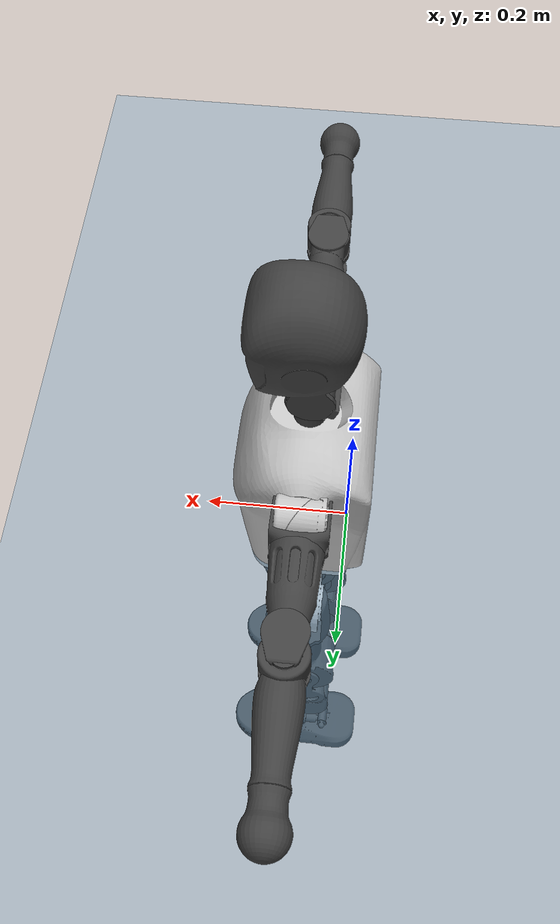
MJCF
<mujoco model="T1">
  <compiler angle="radian" assetdir="assets" balanceinertia="true" inertiafromgeom="false"/>

  <option timestep="0.005" density="1.2" viscosity="2e-05"/>

  <size nkey="1"/>

  <visual>
    <quality shadowsize="8192"/>
    <map shadowclip="0.5"/>
  </visual>

  <default>
    <default class="/">
      <joint armature="0.01" damping="0.01" frictionloss="0.1"/>
      <geom contype="0" conaffinity="0" group="1" solref="-1000 -80"/>
      <site size="0.01 0.005 0.005" group="5"/>
      <general forcelimited="true" biastype="affine" gainprm="25" biasprm="0 -25 -0.6"/>
      <default class="t1">
        <geom rgba="0.25 0.25 0.25 1"/>
        <default class="visual">
          <geom type="mesh" group="2"/>
        </default>
        <default class="collision">
          <geom group="3"/>
        </default>
        <default class="foot">
          <geom size="0.1115 0.05 0.015" type="box" condim="6" group="4" priority="1" solimp="0.015 1 0.015"/>
        </default>
        <default class="reward_collision_sphere">
          <geom group="5" rgba="1 0 0 1"/>
        </default>
      </default>
    </default>
  </default>

  <asset>
    <texture type="skybox" colorspace="auto" name="//unnamed_texture_0" builtin="gradient" rgb1="0.95 0.95 0.95" rgb2="0.95 0.95 0.95" width="100" height="600"/>
    <texture type="2d" colorspace="auto" name="texplane" builtin="checker" rgb1="0.345 0.575 0.748" rgb2="0.345 0.575 0.748" markrgb="1 1 1" width="512" height="512"/>
    <material name="MatPlane" class="/" texture="texplane" texuniform="true" texrepeat="2 2" specular="0.9"/>
    <mesh name="Trunk" class="/" file="Trunk.stl"/>
    <mesh name="H1" class="/" file="H1.stl"/>
    <mesh name="H2" class="/" file="H2.stl"/>
    <mesh name="AL1" class="/" file="AL1.stl"/>
    <mesh name="AL2" class="/" file="AL2.stl"/>
    <mesh name="AL3" class="/" file="AL3.stl"/>
    <mesh name="left_hand_link" class="/" file="left_hand_link.stl"/>
    <mesh name="AR1" class="/" file="AR1.stl"/>
    <mesh name="AR2" class="/" file="AR2.stl"/>
    <mesh name="AR3" class="/" file="AR3.stl"/>
    <mesh name="right_hand_link" class="/" file="right_hand_link.stl"/>
    <mesh name="Waist" class="/" file="Waist.stl"/>
    <mesh name="Hip_Pitch_Left" class="/" file="Hip_Pitch_Left.stl"/>
    <mesh name="Hip_Roll_Left" class="/" file="Hip_Roll_Left.stl"/>
    <mesh name="Hip_Yaw_Left" class="/" file="Hip_Yaw_Left.stl"/>
    <mesh name="Shank_Left" class="/" file="Shank_Left.stl"/>
    <mesh name="Ankle_Cross_Left" class="/" file="Ankle_Cross_Left.stl"/>
    <mesh name="left_foot_link" class="/" file="left_foot_link.stl"/>
    <mesh name="Hip_Pitch_Right" class="/" file="Hip_Pitch_Right.stl"/>
    <mesh name="Hip_Roll_Right" class="/" file="Hip_Roll_Right.stl"/>
    <mesh name="Hip_Yaw_Right" class="/" file="Hip_Yaw_Right.stl"/>
    <mesh name="Shank_Right" class="/" file="Shank_Right.stl"/>
    <mesh name="Ankle_Cross_Right" class="/" file="Ankle_Cross_Right.stl"/>
    <mesh name="right_foot_link" class="/" file="right_foot_link.stl"/>
  </asset>

  <worldbody>
    <geom name="floor" class="/" size="100 100 0.125" type="plane" group="0" material="MatPlane"/>
    <light name="toplight_shadow" class="/" pos="0 0 5" dir="0.0990148 0.0990148 -0.990148" type="directional" ambient="0.04 0.04 0.04" diffuse="0.55 0.55 0.55" specular="0.12 0.12 0.12"/>
    <light name="toplight_fill" class="/" pos="0 0 5" dir="0.0990148 0.0990148 -0.990148" type="directional" castshadow="false" ambient="0.04 0.04 0.04" diffuse="0.3 0.3 0.3" specular="0.08 0.08 0.08"/>
    <body name="trunk" childclass="t1" pos="1.4197e-05 -0.00176063 -0.000519002" quat="0.999999 -0.000623643 -0.0011513 -0.000379106">
      <inertial pos="0.0525933 -0.00147835 0.106192" quat="0.999874 0.0121788 -0.008047 -0.00619214" mass="9.6155" diaginertia="0.0857108 0.0300168 0.0613155"/>
      <joint name="//unnamed_joint_0" type="free" armature="0" damping="0" frictionloss="0"/>
      <geom name="//unnamed_geom_1" class="visual" rgba="0.76 0.76 0.76 1" mesh="Trunk"/>
      <geom name="//unnamed_geom_2" class="collision" size="0.0705495 0.094066 0.141099" pos="0.0585881 0 0.121802" type="box"/>
      <geom name="//unnamed_geom_3" class="reward_collision_sphere" size="0.108176" pos="0.0585881 0 0.101502"/>
      <geom name="//unnamed_geom_4" class="reward_collision_sphere" size="0.0141099" pos="0.0585881 0.070592 0"/>
      <geom name="//unnamed_geom_5" class="reward_collision_sphere" size="0.0141099" pos="0.0585881 -0.070592 0"/>
      <geom name="//unnamed_geom_6" class="reward_collision_sphere" size="0.0141099" pos="0.0585881 0.0888628 0.182703"/>
      <geom name="//unnamed_geom_7" class="reward_collision_sphere" size="0.0141099" pos="0.0585881 -0.0888628 0.182703"/>
      <site name="imu" pos="0.0133367 -0.000137481 -0.0131624" size="0.0094066"/>
      <camera name="track" pos="0 -1.66099 0" quat="0.707107 0.707107 0 0" mode="trackcom"/>
      <camera name="ego_camera" pos="0.119129 0 0.426308" quat="-0.5 -0.5 0.5 0.5"/>
      <body name="H1" pos="0.0575139 -1.49064e-05 0.244149" quat="1 4.83593e-05 -3.28849e-05 -5.40161e-06">
        <inertial pos="-0.00173848 -0.000720707 0.0582841" quat="0.762812 -0.014288 -0.000196984 0.646462" mass="0.364208" diaginertia="0.00020804 8.80284e-05 0.000160458"/>
        <joint name="AAHead_yaw" pos="0 0 0" axis="-0.000167703 -0.00465566 0.999989" stiffness="0.00609672" range="-1.51479 1.56905" armature="0.0106152" damping="0.00589625" frictionloss="0.106717"/>
        <geom name="//unnamed_geom_8" class="visual" mesh="H1"/>
        <body name="H2" pos="-0.00239636 -0.00213261 0.0631648" quat="1 0.000273053 -0.000180854 -0.000328624">
          <inertial pos="0.00958086 -0.0023107 0.0978465" quat="0.990242 0.101988 -0.0643558 -0.0698359" mass="0.531236" diaginertia="0.0017751 0.000735259 0.00185317"/>
          <joint name="Head_pitch" pos="0 0 0" axis="0.000174002 -1 -5.69825e-05" range="-1.235 0.359673" armature="0.0105038" damping="0" frictionloss="0.0890413"/>
          <geom name="//unnamed_geom_9" class="visual" mesh="H2"/>
          <geom name="//unnamed_geom_10" class="collision" size="0.0752528" pos="0.00976468 0 0.111652"/>
          <geom name="//unnamed_geom_11" class="reward_collision_sphere" size="0.0846594" pos="0.0195294 0 0.101502"/>
        </body>
      </body>
      <body name="AL1" pos="0.056365 0.0882551 0.219848" quat="0.999999 0.00102508 5.33434e-05 0.000652262">
        <inertial pos="-0.00358081 0.0364994 0.000381965" quat="0.504523 0.495726 -0.503884 0.495797" mass="0.431661" diaginertia="0.0011838 0.000483726 0.000297209"/>
        <joint name="Left_Shoulder_Pitch" pos="0 0 0" axis="0.0024773 0.99986 -0.016546" range="-3.3454 1.27095" armature="0.00958448" damping="0" frictionloss="0.102798"/>
        <geom name="//unnamed_geom_12" class="visual" rgba="0.76 0.76 0.76 1" mesh="AL1"/>
        <body name="AL2" pos="-0.00143939 0.0406049 0.000356833" quat="1 0.000395545 -8.65683e-05 -0.000120874">
          <inertial pos="0.00278547 0.0342086 -0.0019514" quat="0.490036 0.50737 -0.488148 0.513957" mass="0.138435" diaginertia="0.000367367 0.000138972 0.000190905"/>
          <joint name="Left_Shoulder_Roll" pos="0 0 0" axis="-0.999997 -0.00158564 0.00167991" range="-1.54008 1.73953" armature="0.0106456" damping="0.00588551" frictionloss="0.0938782"/>
          <geom name="//unnamed_geom_13" class="visual" mesh="AL2"/>
          <body name="AL3" pos="0.00128728 0.0498877 0.00192252" quat="1 0.000185975 0.000239715 2.82058e-05">
            <inertial pos="0.00234343 0.0683129 0.000146447" quat="0.709465 0.704679 0.00782369 0.00502657" mass="0.793036" diaginertia="0.0114166 0.00489151 0.00062356"/>
            <joint name="Left_Elbow_Pitch" pos="0 0 0" axis="-0.00191522 -0.999967 0.00795628" range="-2.32149 2.24893" armature="0.0103103" damping="0.0156414" frictionloss="0.0931367"/>
            <geom name="//unnamed_geom_14" class="visual" mesh="AL3"/>
            <geom name="//unnamed_geom_15" class="collision" size="0.0282198 0.0705495" pos="0 0.0415247 0" quat="0.707105 0.707108 0 0" type="cylinder"/>
            <geom name="//unnamed_geom_16" class="reward_collision_sphere" size="0.0338638"/>
            <body name="left_hand_link" pos="0.00115884 0.121339 -0.0018308" quat="0.999999 -0.000713617 0.000750461 0.000635078">
              <inertial pos="-0.00248643 0.0923455 0.000561358" quat="0.706319 0.707893 -0.000371381 0.00120422" mass="0.271279" diaginertia="0.00701364 0.00326437 0.000240161"/>
              <joint name="Left_Elbow_Yaw" pos="0 0 0" axis="0.00384771 -0.00434259 0.999983" range="-2.44293 -0.0419633" armature="0.00991856" damping="0.019102" frictionloss="0.0963935"/>
              <geom name="//unnamed_geom_17" class="visual" mesh="left_hand_link"/>
              <geom name="//unnamed_geom_18" class="collision" size="0.0282198 0.0823077" pos="0 0.107964 0" quat="0.707105 0.707108 0 0" type="cylinder"/>
              <geom name="//unnamed_geom_19" class="reward_collision_sphere" size="0.047033"/>
              <geom name="//unnamed_geom_20" class="reward_collision_sphere" size="0.0329231" pos="0 0.0913543 0"/>
              <geom name="//unnamed_geom_21" class="reward_collision_sphere" size="0.0329231" pos="0 0.178556 0"/>
            </body>
          </body>
        </body>
      </body>
      <body name="AR1" pos="0.0565001 -0.0900321 0.220563" quat="1 -9.27257e-05 0.000652426 0.00019927">
        <inertial pos="-0.00308107 -0.0395253 0.000498084" quat="0.51029 0.492054 -0.509127 0.488135" mass="0.426362" diaginertia="0.00114783 0.000494968 0.000308012"/>
        <joint name="Right_Shoulder_Pitch" pos="0 0 0" axis="0.0126012 -0.999857 0.0112677" range="-1.21685 3.27262" armature="0.0106993" damping="0.00671872" frictionloss="0.0867674"/>
        <geom name="//unnamed_geom_22" class="visual" rgba="0.76 0.76 0.76 1" mesh="AR1"/>
        <body name="AR2" pos="0.00196845 -0.0353538 -0.00216695" quat="0.999999 -0.000870255 4.64424e-05 -0.001165">
          <inertial pos="0.00148293 -0.0320302 0.000556093" quat="0.511521 0.487913 -0.507315 0.492868" mass="0.128474" diaginertia="0.000354696 0.000140767 0.000191508"/>
          <joint name="Right_Shoulder_Roll" pos="0 0 0" axis="-0.999982 0.00485506 -0.00338711" stiffness="0.00163788" range="-1.7248 1.58154" armature="0.00947405" damping="0.0108726" frictionloss="0.103526"/>
          <geom name="//unnamed_geom_23" class="visual" mesh="AR2"/>
          <body name="AR3" pos="0.00197556 -0.0502089 -0.00188063" quat="1 -4.01779e-06 -4.10655e-06 1.36694e-05">
            <inertial pos="-0.000667907 -0.0736645 -0.00081303" quat="0.698097 0.715999 0.00150541 0.0020789" mass="0.851778" diaginertia="0.0114442 0.00510184 0.000693495"/>
            <joint name="Right_Elbow_Pitch" pos="0 0 0" axis="-0.00644184 0.999912 -0.0116082" stiffness="0.00124052" range="-2.32483 2.22558" armature="0.00803035" damping="0.00516866" frictionloss="0.105642"/>
            <geom name="//unnamed_geom_24" class="visual" mesh="AR3"/>
            <geom name="//unnamed_geom_25" class="collision" size="0.0282198 0.0705495" pos="0 -0.0415247 0" quat="0.707105 0.707108 0 0" type="cylinder"/>
            <geom name="//unnamed_geom_26" class="reward_collision_sphere" size="0.0338638"/>
            <body name="right_hand_link" pos="-0.000297974 -0.122079 0.000126409" quat="0.999999 0.00120743 0.000544661 0.000224518">
              <inertial pos="-0.000954987 -0.0925465 0.00355188" quat="0.706417 0.707796 1.27405e-05 0.000706628" mass="0.270367" diaginertia="0.00717556 0.00312704 0.000226787"/>
              <joint name="Right_Elbow_Yaw" pos="0 0 0" axis="0.00417606 -0.00726773 0.999965" range="0.0038768 2.48964" armature="0.0108319" damping="0" frictionloss="0.106787"/>
              <geom name="//unnamed_geom_27" class="visual" mesh="right_hand_link"/>
              <geom name="//unnamed_geom_28" class="collision" size="0.0282198 0.0823077" pos="0 -0.107964 0" quat="0.707105 0.707108 0 0" type="cylinder"/>
              <geom name="//unnamed_geom_29" class="reward_collision_sphere" size="0.047033"/>
              <geom name="//unnamed_geom_30" class="reward_collision_sphere" size="0.0329231" pos="0 -0.0913543 0"/>
              <geom name="//unnamed_geom_31" class="reward_collision_sphere" size="0.0329231" pos="0 -0.178556 0"/>
            </body>
          </body>
        </body>
      </body>
      <body name="Waist" pos="0.0614272 -0.0042363 -0.114668" quat="1 -0.000154205 -0.000552864 -0.00049468">
        <inertial pos="-0.000141632 -0.000125384 0.00641046" quat="0.983197 -0.0131007 -0.182074 0.000550382" mass="2.09067" diaginertia="0.00457979 0.00205664 0.00496753"/>
        <joint name="Waist" pos="0 0 0" axis="0.00101504 0.0129525 0.999916" range="-1.58975 1.51559" armature="0.00945831" damping="0.0200102" frictionloss="0.107122"/>
        <geom name="//unnamed_geom_32" class="visual" mesh="Waist"/>
        <body name="Hip_Pitch_Left" pos="0.000321089 0.0889088 0.000225687" quat="1 0.000479791 -0.000185937 -0.000246756">
          <inertial pos="0.00109852 -0.00830022 -0.0181778" quat="0.974776 0.222834 0.0120325 0.00331812" mass="0.859198" diaginertia="0.0015939 0.000591051 0.00136179"/>
          <joint name="Left_Hip_Pitch" pos="0 0 0" axis="-0.0114555 0.999933 0.00179826" range="-1.80539 1.61916" armature="0.0102358" damping="0" frictionloss="0.0927406"/>
          <geom name="//unnamed_geom_33" class="visual" rgba="0.76 0.76 0.76 1" mesh="Hip_Pitch_Left"/>
          <body name="Hip_Roll_Left" pos="0.000536999 0.00149485 -0.0183535" quat="0.999999 5.30853e-05 0.00115059 0.000470797">
            <inertial pos="-0.00174032 0.000377842 -0.0553075" quat="0.707041 -0.00530148 -0.00537858 0.707132" mass="0.314431" diaginertia="0.00155359 0.000581295 0.00053823"/>
            <joint name="Left_Hip_Roll" pos="0 0 0" axis="-0.999952 0.000197851 0.00980163" stiffness="0.00811323" range="-1.5454 0.189323" armature="0.00861301" damping="0.0165636" frictionloss="0.0984057"/>
            <geom name="//unnamed_geom_34" class="visual" mesh="Hip_Roll_Left"/>
            <geom name="//unnamed_geom_35" class="reward_collision_sphere" size="0.0517363"/>
            <body name="Hip_Yaw_Left" pos="0.00218086 -0.00117691 -0.0854958" quat="1 -0.000361196 -0.00013239 6.11715e-05">
              <inertial pos="-0.00723509 -0.00109536 -0.0903566" quat="0.693312 -0.0239862 -0.0372334 0.719275" mass="1.71778" diaginertia="0.0228565 0.00979262 0.00270185"/>
              <joint name="Left_Hip_Yaw" pos="0 0 0" axis="-0.000325591 -0.00223062 -0.999997" range="-1.06556 1.00837" armature="0.00937804" damping="0.0160275" frictionloss="0.0903917"/>
              <geom name="//unnamed_geom_36" class="visual" mesh="Hip_Yaw_Left"/>
              <geom name="//unnamed_geom_37" class="collision" size="0.047033 0.0752528" type="cylinder"/>
              <body name="Shank_Left" pos="-0.0129348 -0.00275885 -0.138335" quat="1 0.000417039 -0.000155235 -8.84496e-05">
                <inertial pos="-0.00648409 -0.00208223 -0.125452" quat="0.99751 -0.0069325 -0.0132928 0.068913" mass="1.51838" diaginertia="0.0317007 0.0139548 0.00199091"/>
                <joint name="Left_Knee_Pitch" pos="0 0 0" axis="0.00126314 0.999997 -0.0021281" range="0.00675653 2.30297" armature="0.0106636" damping="0" frictionloss="0.0966759"/>
                <geom name="//unnamed_geom_38" class="visual" mesh="Shank_Left"/>
                <geom name="//unnamed_geom_39" class="collision" size="0.047033 0.0705495" pos="0 0 -0.121802" type="cylinder"/>
                <geom name="//unnamed_geom_40" class="reward_collision_sphere" size="0.0611429"/>
                <body name="Ankle_Cross_Left" pos="0.00220153 0.00235066 -0.287567" quat="0.999999 -0.000308319 -0.000695795 -0.00112712">
                  <inertial pos="-0.00504561 -0.00194889 -0.00712609" quat="0.447881 0.545784 0.544432 0.452898" mass="0.0606781" diaginertia="2.55296e-05 1.04743e-05 1.26017e-05"/>
                  <joint name="Left_Ankle_Pitch" pos="0 0 0" axis="-0.0059221 0.999932 0.0100759" range="-0.886744 0.350783" armature="0.00913935" damping="0.00910953" frictionloss="0.0905353"/>
                  <geom name="//unnamed_geom_41" class="visual" mesh="Ankle_Cross_Left"/>
                  <body name="left_foot_link" pos="-0.00281922 -0.00272361 -0.0127868" quat="1 0.000346559 -0.000123815 -0.00020774">
                    <inertial pos="0.00240729 0.00088384 -0.00708752" quat="0.0021328 0.621637 0.00064863 0.783302" mass="0.568659" diaginertia="0.00243567 0.000936843 0.00235009"/>
                    <joint name="Left_Ankle_Roll" pos="0 0 0" axis="-0.999988 -0.00254405 0.00413122" stiffness="0.00672077" range="-0.453559 0.444165" armature="0.0079894" damping="0" frictionloss="0.0914532"/>
                    <geom name="//unnamed_geom_42" class="visual" mesh="left_foot_link"/>
                    <geom name="left_foot" class="foot" size="0.0896594 0.044487 0.0140296" pos="0.00976468 0 -0.0152253"/>
                    <geom name="//unnamed_geom_44" class="reward_collision_sphere" size="0.0489143" pos="0.00976468 0 -0.0152253"/>
                    <geom name="//unnamed_geom_45" class="reward_collision_sphere" size="0.0282198" pos="0.0927644 -0.0191014 -0.0152253"/>
                    <geom name="//unnamed_geom_46" class="reward_collision_sphere" size="0.0282198" pos="-0.0683527 -0.0191014 -0.0152253"/>
                    <site name="left_foot" class="foot" pos="0.00976468 0 -0.0152253" size="0.0094066"/>
                  </body>
                </body>
              </body>
            </body>
          </body>
        </body>
        <body name="Hip_Pitch_Right" pos="-0.00313993 -0.0854707 -0.00200067" quat="0.999999 0.00110885 0.000345941 0.000101501">
          <inertial pos="0.00146408 0.00443942 -0.0183306" quat="0.971496 -0.236435 0.012753 -0.0114878" mass="0.846637" diaginertia="0.00155092 0.000557653 0.0012971"/>
          <joint name="Right_Hip_Pitch" pos="0 0 0" axis="0.00586889 -0.999971 0.0049048" range="-1.62643 1.79242" armature="0.00864904" damping="0.00766916" frictionloss="0.105371"/>
          <geom name="//unnamed_geom_47" class="visual" rgba="0.76 0.76 0.76 1" mesh="Hip_Pitch_Right"/>
          <body name="Hip_Roll_Right" pos="-0.00108596 -0.00144298 -0.0211422" quat="1 0.00047664 -0.000324749 -6.02729e-05">
            <inertial pos="-0.00149139 0.0021628 -0.0568625" quat="0.702978 -0.00297576 -0.00538895 0.711185" mass="0.330332" diaginertia="0.00161069 0.000605113 0.000558565"/>
            <joint name="Right_Hip_Roll" pos="0 0 0" axis="-0.99999 0.00350056 -0.00279723" range="-0.189624 1.57399" armature="0.0100099" damping="0.00401162" frictionloss="0.089243"/>
            <geom name="//unnamed_geom_48" class="visual" mesh="Hip_Roll_Right"/>
            <geom name="//unnamed_geom_49" class="reward_collision_sphere" size="0.0517363"/>
            <body name="Hip_Yaw_Right" pos="-0.000381212 -0.00311476 -0.0824786" quat="1 -2.80008e-05 7.84532e-05 0.000200666">
              <inertial pos="-0.00450633 -0.00243802 -0.0912093" quat="0.713981 -0.031222 -0.0343396 0.698625" mass="1.81273" diaginertia="0.0238098 0.00998881 0.00281448"/>
              <joint name="Right_Hip_Yaw" pos="0 0 0" axis="-0.000816032 8.74937e-06 -1" stiffness="0.000935537" range="-0.9869 0.944564" armature="0.00851875" damping="0.0220502" frictionloss="0.106214"/>
              <geom name="//unnamed_geom_50" class="visual" mesh="Hip_Yaw_Right"/>
              <geom name="//unnamed_geom_51" class="collision" size="0.047033 0.0752528" type="cylinder"/>
              <body name="Shank_Right" pos="-0.011194 0.00214496 -0.135873" quat="0.999999 0.0003499 -0.000733147 0.0010647">
                <inertial pos="-0.00562891 0.00286695 -0.122139" quat="0.998801 0.00386164 -0.0358952 -0.0330594" mass="1.43989" diaginertia="0.0304004 0.0139388 0.00217357"/>
                <joint name="Right_Knee_Pitch" pos="0 0 0" axis="-0.00523501 -0.999985 0.00146396" range="-2.28235 -0.0634491" armature="0.00990036" damping="0.0195392" frictionloss="0.0906629"/>
                <geom name="//unnamed_geom_52" class="visual" mesh="Shank_Right"/>
                <geom name="//unnamed_geom_53" class="collision" size="0.047033 0.0705495" pos="0 0 -0.121802" type="cylinder"/>
                <geom name="//unnamed_geom_54" class="reward_collision_sphere" size="0.0611429"/>
                <body name="Ankle_Cross_Right" pos="0.00288098 -0.00327618 -0.284388" quat="1 0.000229829 0.000758168 -0.000565862">
                  <inertial pos="-0.00429993 -3.74513e-05 -0.00541414" quat="0.447893 0.543257 0.554642 0.443436" mass="0.0607268" diaginertia="2.56731e-05 1.01523e-05 1.18095e-05"/>
                  <joint name="Right_Ankle_Pitch" pos="0 0 0" axis="-0.000562868 -1 0.000536956" range="-0.40623 0.859095" armature="0.00918144" damping="0.00593625" frictionloss="0.0991207"/>
                  <geom name="//unnamed_geom_55" class="visual" mesh="Ankle_Cross_Right"/>
                  <body name="right_foot_link" pos="0.000490554 -0.00324807 -0.0135585" quat="1 0.000241241 4.15132e-05 -6.09146e-05">
                    <inertial pos="0.000564935 0.000184827 -0.012051" quat="-0.00137268 0.620926 0.00211024 0.783865" mass="0.568167" diaginertia="0.00237505 0.00094682 0.00228179"/>
                    <joint name="Right_Ankle_Roll" pos="0 0 0" axis="-0.999944 -0.010573 -0.000927931" range="-0.400848 0.430769" armature="0.0107508" damping="0.00936952" frictionloss="0.0815381"/>
                    <geom name="//unnamed_geom_56" class="visual" mesh="right_foot_link"/>
                    <geom name="right_foot" class="foot" size="0.0737211 0.0429789 0.0135388" pos="0.00976468 0 -0.0152253"/>
                    <geom name="//unnamed_geom_58" class="reward_collision_sphere" size="0.0376264"/>
                    <geom name="//unnamed_geom_59" class="reward_collision_sphere" size="0.0282198" pos="0.00976468 0 -0.0152253"/>
                    <geom name="//unnamed_geom_60" class="reward_collision_sphere" size="0.0282198" pos="0.0927644 0.0191014 -0.0152253"/>
                    <geom name="//unnamed_geom_61" class="reward_collision_sphere" size="0.0282198" pos="-0.0683527 0.0191014 -0.0152253"/>
                    <site name="right_foot" class="foot" pos="0.00976468 0 -0.0152253" size="0.0094066"/>
                  </body>
                </body>
              </body>
            </body>
          </body>
        </body>
      </body>
    </body>
  </worldbody>

  <contact>
    <pair class="/" geom1="floor" geom2="left_foot" name="//unnamed_contact_0"/>
    <pair class="/" geom1="floor" geom2="right_foot" name="//unnamed_contact_1"/>
  </contact>

  <actuator>
    <general name="AAHead_yaw" class="/" joint="AAHead_yaw" forcerange="-6.06289 6.06289" gainprm="23.3347" biasprm="0 -23.3347 -0.546975"/>
    <general name="Head_pitch" class="/" joint="Head_pitch" forcerange="-7.22762 7.22762" gainprm="23.3347" biasprm="0 -23.3347 -0.546975"/>
    <general name="Left_Shoulder_Pitch" class="/" joint="Left_Shoulder_Pitch" forcerange="-17.5848 17.5848" gainprm="23.3347" biasprm="0 -23.3347 -0.546975"/>
    <general name="Left_Shoulder_Roll" class="/" joint="Left_Shoulder_Roll" forcerange="-18.6092 18.6092" gainprm="23.3347" biasprm="0 -23.3347 -0.546975"/>
    <general name="Left_Elbow_Pitch" class="/" joint="Left_Elbow_Pitch" forcerange="-17.4184 17.4184" gainprm="23.3347" biasprm="0 -23.3347 -0.546975"/>
    <general name="Left_Elbow_Yaw" class="/" joint="Left_Elbow_Yaw" forcerange="-17.3372 17.3372" gainprm="23.3347" biasprm="0 -23.3347 -0.546975"/>
    <general name="Right_Shoulder_Pitch" class="/" joint="Right_Shoulder_Pitch" forcerange="-17.1313 17.1313" gainprm="23.3347" biasprm="0 -23.3347 -0.546975"/>
    <general name="Right_Shoulder_Roll" class="/" joint="Right_Shoulder_Roll" forcerange="-16.7034 16.7034" gainprm="23.3347" biasprm="0 -23.3347 -0.546975"/>
    <general name="Right_Elbow_Pitch" class="/" joint="Right_Elbow_Pitch" forcerange="-16.5861 16.5861" gainprm="23.3347" biasprm="0 -23.3347 -0.546975"/>
    <general name="Right_Elbow_Yaw" class="/" joint="Right_Elbow_Yaw" forcerange="-17.2912 17.2912" gainprm="23.3347" biasprm="0 -23.3347 -0.546975"/>
    <general name="Waist" class="/" joint="Waist" forcerange="-25.5459 25.5459" gainprm="23.3347" biasprm="0 -23.3347 -0.546975"/>
    <general name="Left_Hip_Pitch" class="/" joint="Left_Hip_Pitch" forcerange="-41.9469 41.9469" gainprm="23.3347" biasprm="0 -23.3347 -0.546975"/>
    <general name="Left_Hip_Roll" class="/" joint="Left_Hip_Roll" forcerange="-27.8293 27.8293" gainprm="23.3347" biasprm="0 -23.3347 -0.546975"/>
    <general name="Left_Hip_Yaw" class="/" joint="Left_Hip_Yaw" forcerange="-29.1503 29.1503" gainprm="23.3347" biasprm="0 -23.3347 -0.546975"/>
    <general name="Left_Knee_Pitch" class="/" joint="Left_Knee_Pitch" forcerange="-50.2504 50.2504" gainprm="23.3347" biasprm="0 -23.3347 -0.546975"/>
    <general name="Left_Ankle_Pitch" class="/" joint="Left_Ankle_Pitch" forcerange="-20.4022 20.4022" gainprm="23.3347" biasprm="0 -23.3347 -0.546975"/>
    <general name="Left_Ankle_Roll" class="/" joint="Left_Ankle_Roll" forcerange="-13.106 13.106" gainprm="23.3347" biasprm="0 -23.3347 -0.546975"/>
    <general name="Right_Hip_Pitch" class="/" joint="Right_Hip_Pitch" forcerange="-41.6706 41.6706" gainprm="23.3347" biasprm="0 -23.3347 -0.546975"/>
    <general name="Right_Hip_Roll" class="/" joint="Right_Hip_Roll" forcerange="-25.2262 25.2262" gainprm="23.3347" biasprm="0 -23.3347 -0.546975"/>
    <general name="Right_Hip_Yaw" class="/" joint="Right_Hip_Yaw" forcerange="-30.9723 30.9723" gainprm="23.3347" biasprm="0 -23.3347 -0.546975"/>
    <general name="Right_Knee_Pitch" class="/" joint="Right_Knee_Pitch" forcerange="-55.8819 55.8819" gainprm="23.3347" biasprm="0 -23.3347 -0.546975"/>
    <general name="Right_Ankle_Pitch" class="/" joint="Right_Ankle_Pitch" forcerange="-18.9641 18.9641" gainprm="23.3347" biasprm="0 -23.3347 -0.546975"/>
    <general name="Right_Ankle_Roll" class="/" joint="Right_Ankle_Roll" forcerange="-13.9815 13.9815" gainprm="23.3347" biasprm="0 -23.3347 -0.546975"/>
  </actuator>

  <sensor>
    <gyro site="imu" name="imu_angular_velocity"/>
    <velocimeter site="imu" name="imu_linear_velocity"/>
    <framelinvel objtype="site" objname="left_foot" name="left_foot_global_linear_velocity"/>
    <framelinvel objtype="site" objname="right_foot" name="right_foot_global_linear_velocity"/>
  </sensor>

  <keyframe>
    <key name="home" qpos="0 0 0.6385 1 0 0 0 0 0 0 1.4 0 -0.4 0 -1.4 0 0.4 0 -0.4 0 0 0.8 -0.4 0 0.4 0 0 -0.8 0.4 0"/>
  </keyframe>
</mujoco>
